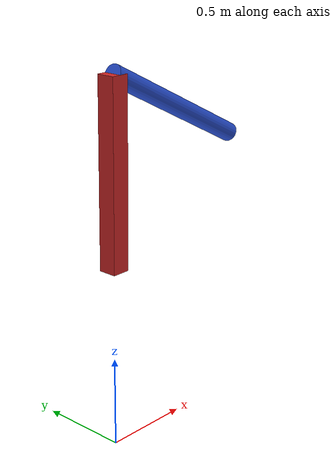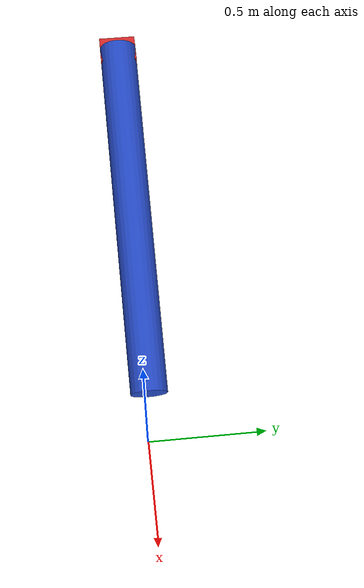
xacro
<?xml version="1.0"?>
<robot name="pr2"
       xmlns:xi="http://www.w3.org/2001/XInclude"
       xmlns:gazebo="http://playerstage.sourceforge.net/gazebo/xmlschema/#gz"
       xmlns:model="http://playerstage.sourceforge.net/gazebo/xmlschema/#model"
       xmlns:sensor="http://playerstage.sourceforge.net/gazebo/xmlschema/#sensor"
       xmlns:body="http://playerstage.sourceforge.net/gazebo/xmlschema/#body"
       xmlns:geom="http://playerstage.sourceforge.net/gazebo/xmlschema/#geom"
       xmlns:joint="http://playerstage.sourceforge.net/gazebo/xmlschema/#joint"
       xmlns:interface="http://playerstage.sourceforge.net/gazebo/xmlschema/#interface"
       xmlns:rendering="http://playerstage.sourceforge.net/gazebo/xmlschema/#rendering"
       xmlns:renderable="http://playerstage.sourceforge.net/gazebo/xmlschema/#renderable"
       xmlns:controller="http://playerstage.sourceforge.net/gazebo/xmlschema/#controller"
       xmlns:physics="http://playerstage.sourceforge.net/gazebo/xmlschema/#physics">

  <link name="world"/>
  <joint name="base_block_joint" type="fixed">
    <parent link="world" />
    <origin xyz="0 0 0" rpy="0 0 0" />
    <child link="base_block" />
  </joint>
  <link name="base_block">
    <inertial>
      <mass value="1000" />
      <origin xyz="0 0 0" />
      <inertia ixx="100"  ixy="0"  ixz="0" iyy="100" iyz="0" izz="100" />
    </inertial>
    <visual>
      <origin xyz="0 0 0" rpy="0 0 0" />
      <geometry>
        <box size="0.001 0.001 0.001" />
      </geometry>
    </visual>
    <collision>
      <origin xyz="0 0 0" rpy="0.0 0.0 0.0" />
      <geometry>
        <box size="0.001 0.001 0.001" />
      </geometry>
    </collision>
  </link>
  <gazebo reference="base_block">
    <material>Gazebo/GrassFloor</material>
  </gazebo>

  <joint name="link1_joint" type="revolute" >
    <axis xyz="0 0 1" />
    <limit lower="0.0" upper="0.0" effort="100" velocity="5" />
    <parent link="base_block" />
    <origin xyz="0 0 2" rpy="0 0 0" />
    <child link="link1" />
  </joint>
  <link name="link1">
    <inertial >
      <mass value="0.1" />
      <origin xyz="0 0 -0.5" />
      <inertia  ixx="0.1" ixy="0.0"  ixz="0.0"  iyy="0.1"  iyz="0.0"  izz="0.1" />
    </inertial>
    <visual >
      <origin xyz="0 0 -0.5" rpy="0 0 0" />
      <geometry>
        <box size="0.1 0.1 1.0" />
      </geometry>
    </visual>
    <collision >
      <origin xyz="0 0 -0.5" rpy="0.0 0.0 0.0" />
      <geometry>
        <box size="0.1 0.1 1.0" />
      </geometry>
    </collision>
  </link>
  <gazebo reference="link1">
    <material>Gazebo/Red</material>
    <turnGravityOff>false</turnGravityOff>
  </gazebo>

  <joint name="link2_joint" type="continuous" >
    <axis xyz="0 1 0" />
    <limit effort="100" velocity="5" />
    <dynamics damping="0.0" friction="0.0" />
    <parent link="link1" />
    <origin xyz="0 0 0" rpy="0 90 0" />
    <child link="link2" />
  </joint>
  <link name="link2">
    <inertial >
      <mass value="1.0" />
      <origin xyz="0 0 0.5" />
      <inertia  ixx="1.0" ixy="0.0"  ixz="0.0"  iyy="1.0"  iyz="0.0"  izz="1.0" />
    </inertial>
    <visual >
      <origin xyz="0 0 0.5" rpy="0 0 0" />
      <geometry>
        <cylinder radius="0.05" length="1.0" />
      </geometry>
    </visual>
    <collision >
      <origin xyz="0 0 0.5" rpy="0 0 0" />
      <geometry>
        <cylinder radius="0.05" length="1.0" />
      </geometry>
    </collision>
  </link>
  <gazebo reference="link2">
    <material>Gazebo/Blue</material>
    <turnGravityOff>false</turnGravityOff>
  </gazebo>

  <!-- mechanism controls -->
  <include filename="./dual_link.transmission.xacro" />

  <gazebo>
      <!-- pr2_actarray -->
      <controller:gazebo_ros_controller_manager name="gazebo_ros_controller_manager" plugin="libgazebo_ros_controller_manager.so">
        <alwaysOn>true</alwaysOn>
        <updateRate>1000.0</updateRate>
      </controller:gazebo_ros_controller_manager>

      <!-- gazebo_ros_p3d for position groundtruth -->
      <controller:gazebo_ros_p3d name="p3d_link1_controller" plugin="libgazebo_ros_p3d.so">
          <alwaysOn>true</alwaysOn>
          <updateRate>1000.0</updateRate>
          <bodyName>link1</bodyName>
          <topicName>link1_pose</topicName>
          <frameName>map</frameName>
          <xyzOffsets>0 0 0.0</xyzOffsets>
          <rpyOffsets>0 0 0.0</rpyOffsets>
          <interface:position name="p3d_link1_position"/>
      </controller:gazebo_ros_p3d>

      <!-- gazebo_ros_p3d for position groundtruth -->
      <controller:gazebo_ros_p3d name="p3d_link2_controller" plugin="libgazebo_ros_p3d.so">
          <alwaysOn>true</alwaysOn>
          <updateRate>1000.0</updateRate>
          <bodyName>link2</bodyName>
          <topicName>link2_pose</topicName>
          <frameName>map</frameName>
          <interface:position name="p3d_link2_position"/>
      </controller:gazebo_ros_p3d>
  </gazebo>
</robot>
